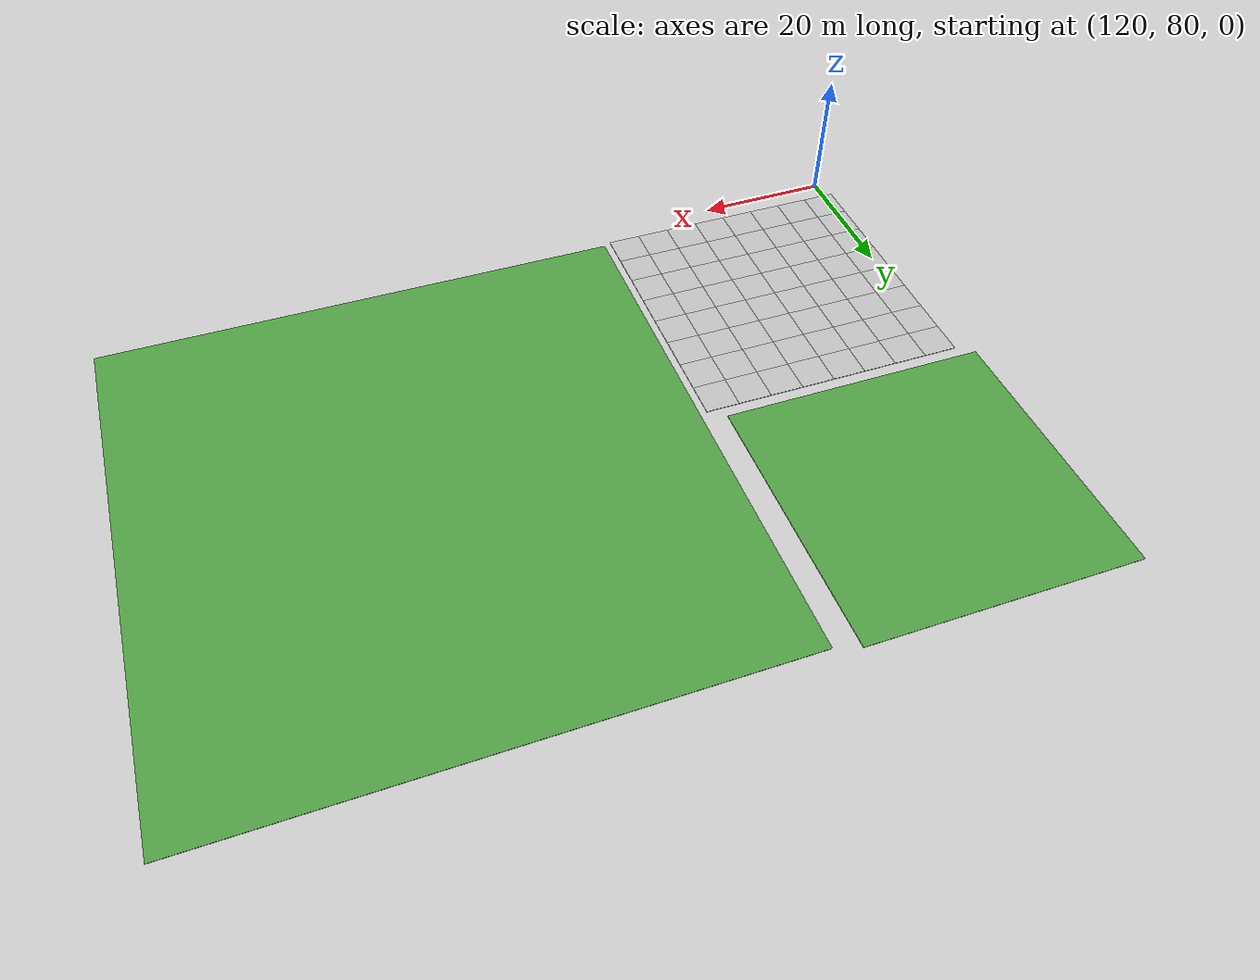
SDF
<sdf version="1.7">
 <world name="default">
  <model name="grass_plane_80x80_4">
   <pose>199.473 123.215 -0.05 0 -0 0</pose>
   <static>1</static>
   <link name="link">
    <collision name="collision"><geometry><box><size>80 80 0.1</size></box></geometry></collision>
    <visual name="grass">
     <cast_shadows>0</cast_shadows>
     <geometry><box><size>80 80 0.1</size></box></geometry>
     <material>
      <script><uri>file://media/materials/scripts/gazebo.material</uri><name>Gazebo/Grass</name></script>
     </material>
    </visual>
   </link>
  </model>
  <model name="mud_plane_40x40_10">
   <model name="mud_plane_20x20">
    <model name="mud_plane">
     <static>1</static>
     <link name="link">
      <collision name="collision"><geometry><box><size>10 10 0.1</size></box></geometry></collision>
      <visual name="visual_1">
       <pose>-2.5 2.5 -0.05 0 -0 0</pose>
       <cast_shadows>0</cast_shadows>
       <geometry><box><size>5 5 0.1</size></box></geometry>
       <material>
        <script>
         <uri>model://mud_plane/materials/scripts</uri>
         <uri>model://mud_plane/materials/textures</uri>
         <name>vrc/mud</name>
        </script>
       </material>
      </visual>
      <visual name="visual_2">
       <pose>2.5 2.5 -0.05 0 -0 0</pose>
       <cast_shadows>0</cast_shadows>
       <geometry><box><size>5 5 0.1</size></box></geometry>
       <material>
        <script>
         <uri>model://mud_plane/materials/scripts</uri>
         <uri>model://mud_plane/materials/textures</uri>
         <name>vrc/mud</name>
        </script>
       </material>
      </visual>
      <visual name="visual_3">
       <pose>2.5 -2.5 -0.05 0 -0 0</pose>
       <cast_shadows>0</cast_shadows>
       <geometry><box><size>5 5 0.1</size></box></geometry>
       <material>
        <script>
         <uri>model://mud_plane/materials/scripts</uri>
         <uri>model://mud_plane/materials/textures</uri>
         <name>vrc/mud</name>
        </script>
       </material>
      </visual>
      <visual name="visual_4">
       <pose>-2.5 -2.5 -0.05 0 -0 0</pose>
       <cast_shadows>0</cast_shadows>
       <geometry><box><size>5 5 0.1</size></box></geometry>
       <material>
        <script>
         <uri>model://mud_plane/materials/scripts</uri>
         <uri>model://mud_plane/materials/textures</uri>
         <name>vrc/mud</name>
        </script>
       </material>
      </visual>
     </link>
     <pose>-4.99986 -4.99991 0 0 -0 0</pose>
    </model>
    <model name="mud_plane_0">
     <static>1</static>
     <link name="link">
      <collision name="collision"><geometry><box><size>10 10 0.1</size></box></geometry></collision>
      <visual name="visual_1">
       <pose>-2.5 2.5 -0.05 0 -0 0</pose>
       <cast_shadows>0</cast_shadows>
       <geometry><box><size>5 5 0.1</size></box></geometry>
       <material>
        <script>
         <uri>model://mud_plane/materials/scripts</uri>
         <uri>model://mud_plane/materials/textures</uri>
         <name>vrc/mud</name>
        </script>
       </material>
      </visual>
      <visual name="visual_2">
       <pose>2.5 2.5 -0.05 0 -0 0</pose>
       <cast_shadows>0</cast_shadows>
       <geometry><box><size>5 5 0.1</size></box></geometry>
       <material>
        <script>
         <uri>model://mud_plane/materials/scripts</uri>
         <uri>model://mud_plane/materials/textures</uri>
         <name>vrc/mud</name>
        </script>
       </material>
      </visual>
      <visual name="visual_3">
       <pose>2.5 -2.5 -0.05 0 -0 0</pose>
       <cast_shadows>0</cast_shadows>
       <geometry><box><size>5 5 0.1</size></box></geometry>
       <material>
        <script>
         <uri>model://mud_plane/materials/scripts</uri>
         <uri>model://mud_plane/materials/textures</uri>
         <name>vrc/mud</name>
        </script>
       </material>
      </visual>
      <visual name="visual_4">
       <pose>-2.5 -2.5 -0.05 0 -0 0</pose>
       <cast_shadows>0</cast_shadows>
       <geometry><box><size>5 5 0.1</size></box></geometry>
       <material>
        <script>
         <uri>model://mud_plane/materials/scripts</uri>
         <uri>model://mud_plane/materials/textures</uri>
         <name>vrc/mud</name>
        </script>
       </material>
      </visual>
     </link>
     <pose>-4.99946 4.99954 0 0 -0 0</pose>
    </model>
    <model name="mud_plane_1">
     <static>1</static>
     <link name="link">
      <collision name="collision"><geometry><box><size>10 10 0.1</size></box></geometry></collision>
      <visual name="visual_1">
       <pose>-2.5 2.5 -0.05 0 -0 0</pose>
       <cast_shadows>0</cast_shadows>
       <geometry><box><size>5 5 0.1</size></box></geometry>
       <material>
        <script>
         <uri>model://mud_plane/materials/scripts</uri>
         <uri>model://mud_plane/materials/textures</uri>
         <name>vrc/mud</name>
        </script>
       </material>
      </visual>
      <visual name="visual_2">
       <pose>2.5 2.5 -0.05 0 -0 0</pose>
       <cast_shadows>0</cast_shadows>
       <geometry><box><size>5 5 0.1</size></box></geometry>
       <material>
        <script>
         <uri>model://mud_plane/materials/scripts</uri>
         <uri>model://mud_plane/materials/textures</uri>
         <name>vrc/mud</name>
        </script>
       </material>
      </visual>
      <visual name="visual_3">
       <pose>2.5 -2.5 -0.05 0 -0 0</pose>
       <cast_shadows>0</cast_shadows>
       <geometry><box><size>5 5 0.1</size></box></geometry>
       <material>
        <script>
         <uri>model://mud_plane/materials/scripts</uri>
         <uri>model://mud_plane/materials/textures</uri>
         <name>vrc/mud</name>
        </script>
       </material>
      </visual>
      <visual name="visual_4">
       <pose>-2.5 -2.5 -0.05 0 -0 0</pose>
       <cast_shadows>0</cast_shadows>
       <geometry><box><size>5 5 0.1</size></box></geometry>
       <material>
        <script>
         <uri>model://mud_plane/materials/scripts</uri>
         <uri>model://mud_plane/materials/textures</uri>
         <name>vrc/mud</name>
        </script>
       </material>
      </visual>
     </link>
     <pose>4.99964 -4.99949 0 0 -0 0</pose>
    </model>
    <model name="mud_plane_2">
     <static>1</static>
     <link name="link">
      <collision name="collision"><geometry><box><size>10 10 0.1</size></box></geometry></collision>
      <visual name="visual_1">
       <pose>-2.5 2.5 -0.05 0 -0 0</pose>
       <cast_shadows>0</cast_shadows>
       <geometry><box><size>5 5 0.1</size></box></geometry>
       <material>
        <script>
         <uri>model://mud_plane/materials/scripts</uri>
         <uri>model://mud_plane/materials/textures</uri>
         <name>vrc/mud</name>
        </script>
       </material>
      </visual>
      <visual name="visual_2">
       <pose>2.5 2.5 -0.05 0 -0 0</pose>
       <cast_shadows>0</cast_shadows>
       <geometry><box><size>5 5 0.1</size></box></geometry>
       <material>
        <script>
         <uri>model://mud_plane/materials/scripts</uri>
         <uri>model://mud_plane/materials/textures</uri>
         <name>vrc/mud</name>
        </script>
       </material>
      </visual>
      <visual name="visual_3">
       <pose>2.5 -2.5 -0.05 0 -0 0</pose>
       <cast_shadows>0</cast_shadows>
       <geometry><box><size>5 5 0.1</size></box></geometry>
       <material>
        <script>
         <uri>model://mud_plane/materials/scripts</uri>
         <uri>model://mud_plane/materials/textures</uri>
         <name>vrc/mud</name>
        </script>
       </material>
      </visual>
      <visual name="visual_4">
       <pose>-2.5 -2.5 -0.05 0 -0 0</pose>
       <cast_shadows>0</cast_shadows>
       <geometry><box><size>5 5 0.1</size></box></geometry>
       <material>
        <script>
         <uri>model://mud_plane/materials/scripts</uri>
         <uri>model://mud_plane/materials/textures</uri>
         <name>vrc/mud</name>
        </script>
       </material>
      </visual>
     </link>
     <pose>4.99967 4.99986 0 0 -0 0</pose>
    </model>
    <static>0</static>
    <pose>-9.99895 9.99843 0 0 -0 0</pose>
   </model>
   <model name="mud_plane_20x20_0">
    <model name="mud_plane">
     <static>1</static>
     <link name="link">
      <collision name="collision"><geometry><box><size>10 10 0.1</size></box></geometry></collision>
      <visual name="visual_1">
       <pose>-2.5 2.5 -0.05 0 -0 0</pose>
       <cast_shadows>0</cast_shadows>
       <geometry><box><size>5 5 0.1</size></box></geometry>
       <material>
        <script>
         <uri>model://mud_plane/materials/scripts</uri>
         <uri>model://mud_plane/materials/textures</uri>
         <name>vrc/mud</name>
        </script>
       </material>
      </visual>
      <visual name="visual_2">
       <pose>2.5 2.5 -0.05 0 -0 0</pose>
       <cast_shadows>0</cast_shadows>
       <geometry><box><size>5 5 0.1</size></box></geometry>
       <material>
        <script>
         <uri>model://mud_plane/materials/scripts</uri>
         <uri>model://mud_plane/materials/textures</uri>
         <name>vrc/mud</name>
        </script>
       </material>
      </visual>
      <visual name="visual_3">
       <pose>2.5 -2.5 -0.05 0 -0 0</pose>
       <cast_shadows>0</cast_shadows>
       <geometry><box><size>5 5 0.1</size></box></geometry>
       <material>
        <script>
         <uri>model://mud_plane/materials/scripts</uri>
         <uri>model://mud_plane/materials/textures</uri>
         <name>vrc/mud</name>
        </script>
       </material>
      </visual>
      <visual name="visual_4">
       <pose>-2.5 -2.5 -0.05 0 -0 0</pose>
       <cast_shadows>0</cast_shadows>
       <geometry><box><size>5 5 0.1</size></box></geometry>
       <material>
        <script>
         <uri>model://mud_plane/materials/scripts</uri>
         <uri>model://mud_plane/materials/textures</uri>
         <name>vrc/mud</name>
        </script>
       </material>
      </visual>
     </link>
     <pose>-4.99986 -4.99991 0 0 -0 0</pose>
    </model>
    <model name="mud_plane_0">
     <static>1</static>
     <link name="link">
      <collision name="collision"><geometry><box><size>10 10 0.1</size></box></geometry></collision>
      <visual name="visual_1">
       <pose>-2.5 2.5 -0.05 0 -0 0</pose>
       <cast_shadows>0</cast_shadows>
       <geometry><box><size>5 5 0.1</size></box></geometry>
       <material>
        <script>
         <uri>model://mud_plane/materials/scripts</uri>
         <uri>model://mud_plane/materials/textures</uri>
         <name>vrc/mud</name>
        </script>
       </material>
      </visual>
      <visual name="visual_2">
       <pose>2.5 2.5 -0.05 0 -0 0</pose>
       <cast_shadows>0</cast_shadows>
       <geometry><box><size>5 5 0.1</size></box></geometry>
       <material>
        <script>
         <uri>model://mud_plane/materials/scripts</uri>
         <uri>model://mud_plane/materials/textures</uri>
         <name>vrc/mud</name>
        </script>
       </material>
      </visual>
      <visual name="visual_3">
       <pose>2.5 -2.5 -0.05 0 -0 0</pose>
       <cast_shadows>0</cast_shadows>
       <geometry><box><size>5 5 0.1</size></box></geometry>
       <material>
        <script>
         <uri>model://mud_plane/materials/scripts</uri>
         <uri>model://mud_plane/materials/textures</uri>
         <name>vrc/mud</name>
        </script>
       </material>
      </visual>
      <visual name="visual_4">
       <pose>-2.5 -2.5 -0.05 0 -0 0</pose>
       <cast_shadows>0</cast_shadows>
       <geometry><box><size>5 5 0.1</size></box></geometry>
       <material>
        <script>
         <uri>model://mud_plane/materials/scripts</uri>
         <uri>model://mud_plane/materials/textures</uri>
         <name>vrc/mud</name>
        </script>
       </material>
      </visual>
     </link>
     <pose>-4.99946 4.99954 0 0 -0 0</pose>
    </model>
    <model name="mud_plane_1">
     <static>1</static>
     <link name="link">
      <collision name="collision"><geometry><box><size>10 10 0.1</size></box></geometry></collision>
      <visual name="visual_1">
       <pose>-2.5 2.5 -0.05 0 -0 0</pose>
       <cast_shadows>0</cast_shadows>
       <geometry><box><size>5 5 0.1</size></box></geometry>
       <material>
        <script>
         <uri>model://mud_plane/materials/scripts</uri>
         <uri>model://mud_plane/materials/textures</uri>
         <name>vrc/mud</name>
        </script>
       </material>
      </visual>
      <visual name="visual_2">
       <pose>2.5 2.5 -0.05 0 -0 0</pose>
       <cast_shadows>0</cast_shadows>
       <geometry><box><size>5 5 0.1</size></box></geometry>
       <material>
        <script>
         <uri>model://mud_plane/materials/scripts</uri>
         <uri>model://mud_plane/materials/textures</uri>
         <name>vrc/mud</name>
        </script>
       </material>
      </visual>
      <visual name="visual_3">
       <pose>2.5 -2.5 -0.05 0 -0 0</pose>
       <cast_shadows>0</cast_shadows>
       <geometry><box><size>5 5 0.1</size></box></geometry>
       <material>
        <script>
         <uri>model://mud_plane/materials/scripts</uri>
         <uri>model://mud_plane/materials/textures</uri>
         <name>vrc/mud</name>
        </script>
       </material>
      </visual>
      <visual name="visual_4">
       <pose>-2.5 -2.5 -0.05 0 -0 0</pose>
       <cast_shadows>0</cast_shadows>
       <geometry><box><size>5 5 0.1</size></box></geometry>
       <material>
        <script>
         <uri>model://mud_plane/materials/scripts</uri>
         <uri>model://mud_plane/materials/textures</uri>
         <name>vrc/mud</name>
        </script>
       </material>
      </visual>
     </link>
     <pose>4.99964 -4.99949 0 0 -0 0</pose>
    </model>
    <model name="mud_plane_2">
     <static>1</static>
     <link name="link">
      <collision name="collision"><geometry><box><size>10 10 0.1</size></box></geometry></collision>
      <visual name="visual_1">
       <pose>-2.5 2.5 -0.05 0 -0 0</pose>
       <cast_shadows>0</cast_shadows>
       <geometry><box><size>5 5 0.1</size></box></geometry>
       <material>
        <script>
         <uri>model://mud_plane/materials/scripts</uri>
         <uri>model://mud_plane/materials/textures</uri>
         <name>vrc/mud</name>
        </script>
       </material>
      </visual>
      <visual name="visual_2">
       <pose>2.5 2.5 -0.05 0 -0 0</pose>
       <cast_shadows>0</cast_shadows>
       <geometry><box><size>5 5 0.1</size></box></geometry>
       <material>
        <script>
         <uri>model://mud_plane/materials/scripts</uri>
         <uri>model://mud_plane/materials/textures</uri>
         <name>vrc/mud</name>
        </script>
       </material>
      </visual>
      <visual name="visual_3">
       <pose>2.5 -2.5 -0.05 0 -0 0</pose>
       <cast_shadows>0</cast_shadows>
       <geometry><box><size>5 5 0.1</size></box></geometry>
       <material>
        <script>
         <uri>model://mud_plane/materials/scripts</uri>
         <uri>model://mud_plane/materials/textures</uri>
         <name>vrc/mud</name>
        </script>
       </material>
      </visual>
      <visual name="visual_4">
       <pose>-2.5 -2.5 -0.05 0 -0 0</pose>
       <cast_shadows>0</cast_shadows>
       <geometry><box><size>5 5 0.1</size></box></geometry>
       <material>
        <script>
         <uri>model://mud_plane/materials/scripts</uri>
         <uri>model://mud_plane/materials/textures</uri>
         <name>vrc/mud</name>
        </script>
       </material>
      </visual>
     </link>
     <pose>4.99967 4.99986 0 0 -0 0</pose>
    </model>
    <static>0</static>
    <pose>9.99933 9.9997 0 0 -0 0</pose>
   </model>
   <model name="mud_plane_20x20_1">
    <model name="mud_plane">
     <static>1</static>
     <link name="link">
      <collision name="collision"><geometry><box><size>10 10 0.1</size></box></geometry></collision>
      <visual name="visual_1">
       <pose>-2.5 2.5 -0.05 0 -0 0</pose>
       <cast_shadows>0</cast_shadows>
       <geometry><box><size>5 5 0.1</size></box></geometry>
       <material>
        <script>
         <uri>model://mud_plane/materials/scripts</uri>
         <uri>model://mud_plane/materials/textures</uri>
         <name>vrc/mud</name>
        </script>
       </material>
      </visual>
      <visual name="visual_2">
       <pose>2.5 2.5 -0.05 0 -0 0</pose>
       <cast_shadows>0</cast_shadows>
       <geometry><box><size>5 5 0.1</size></box></geometry>
       <material>
        <script>
         <uri>model://mud_plane/materials/scripts</uri>
         <uri>model://mud_plane/materials/textures</uri>
         <name>vrc/mud</name>
        </script>
       </material>
      </visual>
      <visual name="visual_3">
       <pose>2.5 -2.5 -0.05 0 -0 0</pose>
       <cast_shadows>0</cast_shadows>
       <geometry><box><size>5 5 0.1</size></box></geometry>
       <material>
        <script>
         <uri>model://mud_plane/materials/scripts</uri>
         <uri>model://mud_plane/materials/textures</uri>
         <name>vrc/mud</name>
        </script>
       </material>
      </visual>
      <visual name="visual_4">
       <pose>-2.5 -2.5 -0.05 0 -0 0</pose>
       <cast_shadows>0</cast_shadows>
       <geometry><box><size>5 5 0.1</size></box></geometry>
       <material>
        <script>
         <uri>model://mud_plane/materials/scripts</uri>
         <uri>model://mud_plane/materials/textures</uri>
         <name>vrc/mud</name>
        </script>
       </material>
      </visual>
     </link>
     <pose>-4.99986 -4.99991 0 0 -0 0</pose>
    </model>
    <model name="mud_plane_0">
     <static>1</static>
     <link name="link">
      <collision name="collision"><geometry><box><size>10 10 0.1</size></box></geometry></collision>
      <visual name="visual_1">
       <pose>-2.5 2.5 -0.05 0 -0 0</pose>
       <cast_shadows>0</cast_shadows>
       <geometry><box><size>5 5 0.1</size></box></geometry>
       <material>
        <script>
         <uri>model://mud_plane/materials/scripts</uri>
         <uri>model://mud_plane/materials/textures</uri>
         <name>vrc/mud</name>
        </script>
       </material>
      </visual>
      <visual name="visual_2">
       <pose>2.5 2.5 -0.05 0 -0 0</pose>
       <cast_shadows>0</cast_shadows>
       <geometry><box><size>5 5 0.1</size></box></geometry>
       <material>
        <script>
         <uri>model://mud_plane/materials/scripts</uri>
         <uri>model://mud_plane/materials/textures</uri>
         <name>vrc/mud</name>
        </script>
       </material>
      </visual>
      <visual name="visual_3">
       <pose>2.5 -2.5 -0.05 0 -0 0</pose>
       <cast_shadows>0</cast_shadows>
       <geometry><box><size>5 5 0.1</size></box></geometry>
       <material>
        <script>
         <uri>model://mud_plane/materials/scripts</uri>
         <uri>model://mud_plane/materials/textures</uri>
         <name>vrc/mud</name>
        </script>
       </material>
      </visual>
      <visual name="visual_4">
       <pose>-2.5 -2.5 -0.05 0 -0 0</pose>
       <cast_shadows>0</cast_shadows>
       <geometry><box><size>5 5 0.1</size></box></geometry>
       <material>
        <script>
         <uri>model://mud_plane/materials/scripts</uri>
         <uri>model://mud_plane/materials/textures</uri>
         <name>vrc/mud</name>
        </script>
       </material>
      </visual>
     </link>
     <pose>-4.99946 4.99954 0 0 -0 0</pose>
    </model>
    <model name="mud_plane_1">
     <static>1</static>
     <link name="link">
      <collision name="collision"><geometry><box><size>10 10 0.1</size></box></geometry></collision>
      <visual name="visual_1">
       <pose>-2.5 2.5 -0.05 0 -0 0</pose>
       <cast_shadows>0</cast_shadows>
       <geometry><box><size>5 5 0.1</size></box></geometry>
       <material>
        <script>
         <uri>model://mud_plane/materials/scripts</uri>
         <uri>model://mud_plane/materials/textures</uri>
         <name>vrc/mud</name>
        </script>
       </material>
      </visual>
      <visual name="visual_2">
       <pose>2.5 2.5 -0.05 0 -0 0</pose>
       <cast_shadows>0</cast_shadows>
       <geometry><box><size>5 5 0.1</size></box></geometry>
       <material>
        <script>
         <uri>model://mud_plane/materials/scripts</uri>
         <uri>model://mud_plane/materials/textures</uri>
         <name>vrc/mud</name>
        </script>
       </material>
      </visual>
      <visual name="visual_3">
       <pose>2.5 -2.5 -0.05 0 -0 0</pose>
       <cast_shadows>0</cast_shadows>
       <geometry><box><size>5 5 0.1</size></box></geometry>
       <material>
        <script>
         <uri>model://mud_plane/materials/scripts</uri>
         <uri>model://mud_plane/materials/textures</uri>
         <name>vrc/mud</name>
        </script>
       </material>
      </visual>
      <visual name="visual_4">
       <pose>-2.5 -2.5 -0.05 0 -0 0</pose>
       <cast_shadows>0</cast_shadows>
       <geometry><box><size>5 5 0.1</size></box></geometry>
       <material>
        <script>
         <uri>model://mud_plane/materials/scripts</uri>
         <uri>model://mud_plane/materials/textures</uri>
         <name>vrc/mud</name>
        </script>
       </material>
      </visual>
     </link>
     <pose>4.99964 -4.99949 0 0 -0 0</pose>
    </model>
    <model name="mud_plane_2">
     <static>1</static>
     <link name="link">
      <collision name="collision"><geometry><box><size>10 10 0.1</size></box></geometry></collision>
      <visual name="visual_1">
       <pose>-2.5 2.5 -0.05 0 -0 0</pose>
       <cast_shadows>0</cast_shadows>
       <geometry><box><size>5 5 0.1</size></box></geometry>
       <material>
        <script>
         <uri>model://mud_plane/materials/scripts</uri>
         <uri>model://mud_plane/materials/textures</uri>
         <name>vrc/mud</name>
        </script>
       </material>
      </visual>
      <visual name="visual_2">
       <pose>2.5 2.5 -0.05 0 -0 0</pose>
       <cast_shadows>0</cast_shadows>
       <geometry><box><size>5 5 0.1</size></box></geometry>
       <material>
        <script>
         <uri>model://mud_plane/materials/scripts</uri>
         <uri>model://mud_plane/materials/textures</uri>
         <name>vrc/mud</name>
        </script>
       </material>
      </visual>
      <visual name="visual_3">
       <pose>2.5 -2.5 -0.05 0 -0 0</pose>
       <cast_shadows>0</cast_shadows>
       <geometry><box><size>5 5 0.1</size></box></geometry>
       <material>
        <script>
         <uri>model://mud_plane/materials/scripts</uri>
         <uri>model://mud_plane/materials/textures</uri>
         <name>vrc/mud</name>
        </script>
       </material>
      </visual>
      <visual name="visual_4">
       <pose>-2.5 -2.5 -0.05 0 -0 0</pose>
       <cast_shadows>0</cast_shadows>
       <geometry><box><size>5 5 0.1</size></box></geometry>
       <material>
        <script>
         <uri>model://mud_plane/materials/scripts</uri>
         <uri>model://mud_plane/materials/textures</uri>
         <name>vrc/mud</name>
        </script>
       </material>
      </visual>
     </link>
     <pose>4.99967 4.99986 0 0 -0 0</pose>
    </model>
    <static>0</static>
    <pose>9.9993 -9.99877 0 0 -0 0</pose>
   </model>
   <model name="mud_plane_20x20_2">
    <model name="mud_plane">
     <static>1</static>
     <link name="link">
      <collision name="collision"><geometry><box><size>10 10 0.1</size></box></geometry></collision>
      <visual name="visual_1">
       <pose>-2.5 2.5 -0.05 0 -0 0</pose>
       <cast_shadows>0</cast_shadows>
       <geometry><box><size>5 5 0.1</size></box></geometry>
       <material>
        <script>
         <uri>model://mud_plane/materials/scripts</uri>
         <uri>model://mud_plane/materials/textures</uri>
         <name>vrc/mud</name>
        </script>
       </material>
      </visual>
      <visual name="visual_2">
       <pose>2.5 2.5 -0.05 0 -0 0</pose>
       <cast_shadows>0</cast_shadows>
       <geometry><box><size>5 5 0.1</size></box></geometry>
       <material>
        <script>
         <uri>model://mud_plane/materials/scripts</uri>
         <uri>model://mud_plane/materials/textures</uri>
         <name>vrc/mud</name>
        </script>
       </material>
      </visual>
      <visual name="visual_3">
       <pose>2.5 -2.5 -0.05 0 -0 0</pose>
       <cast_shadows>0</cast_shadows>
       <geometry><box><size>5 5 0.1</size></box></geometry>
       <material>
        <script>
         <uri>model://mud_plane/materials/scripts</uri>
         <uri>model://mud_plane/materials/textures</uri>
         <name>vrc/mud</name>
        </script>
       </material>
      </visual>
      <visual name="visual_4">
       <pose>-2.5 -2.5 -0.05 0 -0 0</pose>
       <cast_shadows>0</cast_shadows>
       <geometry><box><size>5 5 0.1</size></box></geometry>
       <material>
        <script>
         <uri>model://mud_plane/materials/scripts</uri>
         <uri>model://mud_plane/materials/textures</uri>
         <name>vrc/mud</name>
        </script>
       </material>
      </visual>
     </link>
     <pose>-4.99986 -4.99991 0 0 -0 0</pose>
    </model>
    <model name="mud_plane_0">
     <static>1</static>
     <link name="link">
      <collision name="collision"><geometry><box><size>10 10 0.1</size></box></geometry></collision>
      <visual name="visual_1">
       <pose>-2.5 2.5 -0.05 0 -0 0</pose>
       <cast_shadows>0</cast_shadows>
       <geometry><box><size>5 5 0.1</size></box></geometry>
       <material>
        <script>
         <uri>model://mud_plane/materials/scripts</uri>
         <uri>model://mud_plane/materials/textures</uri>
         <name>vrc/mud</name>
        </script>
       </material>
      </visual>
      <visual name="visual_2">
       <pose>2.5 2.5 -0.05 0 -0 0</pose>
       <cast_shadows>0</cast_shadows>
       <geometry><box><size>5 5 0.1</size></box></geometry>
       <material>
        <script>
         <uri>model://mud_plane/materials/scripts</uri>
         <uri>model://mud_plane/materials/textures</uri>
         <name>vrc/mud</name>
        </script>
       </material>
      </visual>
      <visual name="visual_3">
       <pose>2.5 -2.5 -0.05 0 -0 0</pose>
       <cast_shadows>0</cast_shadows>
       <geometry><box><size>5 5 0.1</size></box></geometry>
       <material>
        <script>
         <uri>model://mud_plane/materials/scripts</uri>
         <uri>model://mud_plane/materials/textures</uri>
         <name>vrc/mud</name>
        </script>
       </material>
      </visual>
      <visual name="visual_4">
       <pose>-2.5 -2.5 -0.05 0 -0 0</pose>
       <cast_shadows>0</cast_shadows>
       <geometry><box><size>5 5 0.1</size></box></geometry>
       <material>
        <script>
         <uri>model://mud_plane/materials/scripts</uri>
         <uri>model://mud_plane/materials/textures</uri>
         <name>vrc/mud</name>
        </script>
       </material>
      </visual>
     </link>
     <pose>-4.99946 4.99954 0 0 -0 0</pose>
    </model>
    <model name="mud_plane_1">
     <static>1</static>
     <link name="link">
      <collision name="collision"><geometry><box><size>10 10 0.1</size></box></geometry></collision>
      <visual name="visual_1">
       <pose>-2.5 2.5 -0.05 0 -0 0</pose>
       <cast_shadows>0</cast_shadows>
       <geometry><box><size>5 5 0.1</size></box></geometry>
       <material>
        <script>
         <uri>model://mud_plane/materials/scripts</uri>
         <uri>model://mud_plane/materials/textures</uri>
         <name>vrc/mud</name>
        </script>
       </material>
      </visual>
      <visual name="visual_2">
       <pose>2.5 2.5 -0.05 0 -0 0</pose>
       <cast_shadows>0</cast_shadows>
       <geometry><box><size>5 5 0.1</size></box></geometry>
       <material>
        <script>
         <uri>model://mud_plane/materials/scripts</uri>
         <uri>model://mud_plane/materials/textures</uri>
         <name>vrc/mud</name>
        </script>
       </material>
      </visual>
      <visual name="visual_3">
       <pose>2.5 -2.5 -0.05 0 -0 0</pose>
       <cast_shadows>0</cast_shadows>
       <geometry><box><size>5 5 0.1</size></box></geometry>
       <material>
        <script>
         <uri>model://mud_plane/materials/scripts</uri>
         <uri>model://mud_plane/materials/textures</uri>
         <name>vrc/mud</name>
        </script>
       </material>
      </visual>
      <visual name="visual_4">
       <pose>-2.5 -2.5 -0.05 0 -0 0</pose>
       <cast_shadows>0</cast_shadows>
       <geometry><box><size>5 5 0.1</size></box></geometry>
       <material>
        <script>
         <uri>model://mud_plane/materials/scripts</uri>
         <uri>model://mud_plane/materials/textures</uri>
         <name>vrc/mud</name>
        </script>
       </material>
      </visual>
     </link>
     <pose>4.99964 -4.99949 0 0 -0 0</pose>
    </model>
    <model name="mud_plane_2">
     <static>1</static>
     <link name="link">
      <collision name="collision"><geometry><box><size>10 10 0.1</size></box></geometry></collision>
      <visual name="visual_1">
       <pose>-2.5 2.5 -0.05 0 -0 0</pose>
       <cast_shadows>0</cast_shadows>
       <geometry><box><size>5 5 0.1</size></box></geometry>
       <material>
        <script>
         <uri>model://mud_plane/materials/scripts</uri>
         <uri>model://mud_plane/materials/textures</uri>
         <name>vrc/mud</name>
        </script>
       </material>
      </visual>
      <visual name="visual_2">
       <pose>2.5 2.5 -0.05 0 -0 0</pose>
       <cast_shadows>0</cast_shadows>
       <geometry><box><size>5 5 0.1</size></box></geometry>
       <material>
        <script>
         <uri>model://mud_plane/materials/scripts</uri>
         <uri>model://mud_plane/materials/textures</uri>
         <name>vrc/mud</name>
        </script>
       </material>
      </visual>
      <visual name="visual_3">
       <pose>2.5 -2.5 -0.05 0 -0 0</pose>
       <cast_shadows>0</cast_shadows>
       <geometry><box><size>5 5 0.1</size></box></geometry>
       <material>
        <script>
         <uri>model://mud_plane/materials/scripts</uri>
         <uri>model://mud_plane/materials/textures</uri>
         <name>vrc/mud</name>
        </script>
       </material>
      </visual>
      <visual name="visual_4">
       <pose>-2.5 -2.5 -0.05 0 -0 0</pose>
       <cast_shadows>0</cast_shadows>
       <geometry><box><size>5 5 0.1</size></box></geometry>
       <material>
        <script>
         <uri>model://mud_plane/materials/scripts</uri>
         <uri>model://mud_plane/materials/textures</uri>
         <name>vrc/mud</name>
        </script>
       </material>
      </visual>
     </link>
     <pose>4.99967 4.99986 0 0 -0 0</pose>
    </model>
    <static>0</static>
    <pose>-9.99969 -9.99935 0 0 -0 0</pose>
   </model>
   <static>0</static>
   <pose>138.357 102.626 0 0 -0 0</pose>
  </model>
  <model name="grass_plane_40x40">
   <pose>135.908 144.323 -0.05 0 -0 0</pose>
   <static>1</static>
   <link name="link">
    <collision name="collision"><geometry><box><size>40 40 0.1</size></box></geometry></collision>
    <visual name="grass">
     <cast_shadows>0</cast_shadows>
     <geometry><box><size>40 40 0.1</size></box></geometry>
     <material>
      <script><uri>file://media/materials/scripts/gazebo.material</uri><name>Gazebo/Grass</name></script>
     </material>
    </visual>
   </link>
  </model>
 </world>
</sdf>
